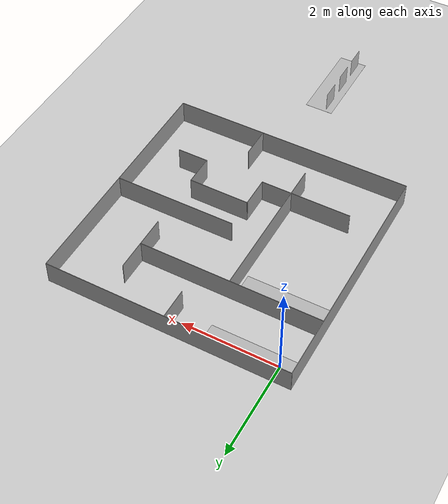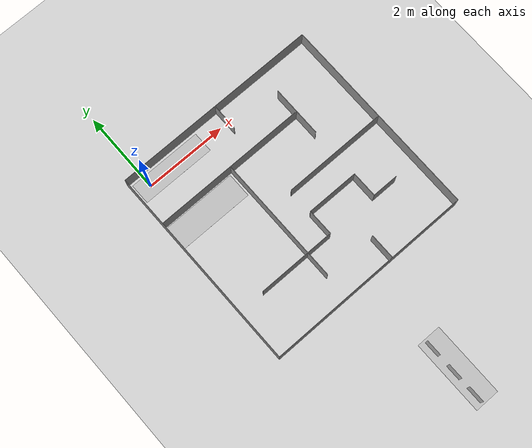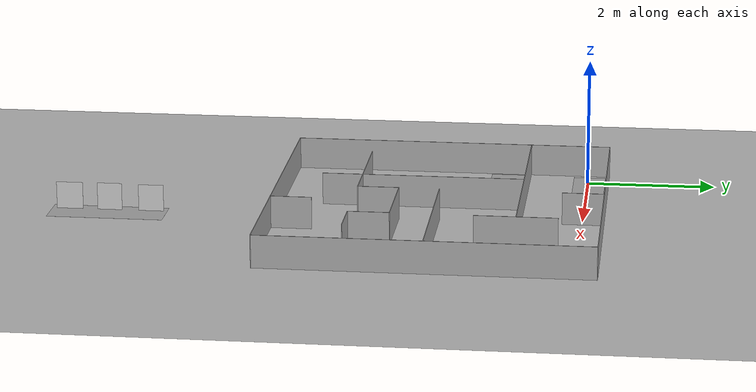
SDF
<sdf version="1.7">
 <world name="default">
  <light name="sun" type="directional">
   <pose>0 0 10 0 -0 0</pose>
   <diffuse>0.8 0.8 0.8 1</diffuse>
   <specular>0.2 0.2 0.2 1</specular>
   <attenuation>
    <range>1000</range>
    <constant>0.9</constant>
    <linear>0.01</linear>
    <quadratic>0.001</quadratic>
   </attenuation>
   <direction>-0.5 0.1 -0.9</direction>
   <spot><inner_angle>0</inner_angle><outer_angle>0</outer_angle><falloff>0</falloff></spot>
  </light>
  <model name="ground_plane">
   <static>1</static>
   <link name="link">
    <collision name="collision">
     <geometry><plane><normal>0 0 1</normal><size>100 100</size></plane></geometry>
     <surface><friction><ode><mu>100</mu><mu2>50</mu2></ode></friction></surface>
    </collision>
    <visual name="visual">
     <cast_shadows>0</cast_shadows>
     <geometry><plane><normal>0 0 1</normal><size>100 100</size></plane></geometry>
     <material>
      <script><uri>file://media/materials/scripts/gazebo.material</uri><name>Gazebo/Grey</name></script>
     </material>
    </visual>
   </link>
  </model>
  <gravity>0 0 -9.8</gravity>
  <magnetic_field>6e-06 2.3e-05 -4.2e-05</magnetic_field>
  <atmosphere type="adiabatic"/>
  <physics type="ode">
   <max_step_size>0.001</max_step_size>
   <real_time_factor>1</real_time_factor>
   <real_time_update_rate>1000</real_time_update_rate>
  </physics>
  <scene><ambient>0.4 0.4 0.4 1</ambient><background>0.7 0.7 0.7 1</background><shadows>1</shadows></scene>
  <spherical_coordinates>
   <surface_model>EARTH_WGS84</surface_model>
   <latitude_deg>0</latitude_deg>
   <longitude_deg>0</longitude_deg>
   <elevation>0</elevation>
   <heading_deg>0</heading_deg>
  </spherical_coordinates>
  <model name="17th_ifly_scale1.25">
   <pose>2.15063 -2.17324 0 0 -0 0</pose>
   <link name="Wall_12">
    <collision name="Wall_12_Collision">
     <geometry><box><size>0.630711 0.01 0.5</size></box></geometry>
     <pose>0 0 0.25 0 -0 0</pose>
    </collision>
    <visual name="Wall_12_Visual">
     <pose>0 0 0.25 0 -0 0</pose>
     <geometry><box><size>0.630711 0.01 0.5</size></box></geometry>
     <material>
      <script><uri>file://media/materials/scripts/gazebo.material</uri><name>Gazebo/Grey</name></script>
      <ambient>1 1 1 1</ambient>
     </material>
     <meta><layer>0</layer></meta>
    </visual>
    <pose>0.0005 2.183 0 0 -0 -1.5708</pose>
   </link>
   <link name="Wall_14">
    <collision name="Wall_14_Collision">
     <geometry><box><size>1.25238 0.01 0.5</size></box></geometry>
     <pose>0 0 0.25 0 -0 0</pose>
    </collision>
    <visual name="Wall_14_Visual">
     <pose>0 0 0.25 0 -0 0</pose>
     <geometry><box><size>1.25238 0.01 0.5</size></box></geometry>
     <material>
      <script><uri>file://media/materials/scripts/gazebo.material</uri><name>Gazebo/Grey</name></script>
      <ambient>1 1 1 1</ambient>
     </material>
     <meta><layer>0</layer></meta>
    </visual>
    <pose>1.2565 1.2475 0 0 -0 -1.57241</pose>
   </link>
   <link name="Wall_16">
    <collision name="Wall_16_Collision">
     <geometry><box><size>3.12902 0.01 0.5</size></box></geometry>
     <pose>0 0 0.25 0 -0 0</pose>
    </collision>
    <visual name="Wall_16_Visual">
     <pose>0 0 0.25 0 -0 0</pose>
     <geometry><box><size>3.12902 0.01 0.5</size></box></geometry>
     <material>
      <script><uri>file://media/materials/scripts/gazebo.material</uri><name>Gazebo/Grey</name></script>
      <ambient>1 1 1 1</ambient>
     </material>
     <meta><layer>0</layer></meta>
    </visual>
    <pose>-0.6345 -0.311999 0 0 -0 -1.57015</pose>
   </link>
   <link name="Wall_18">
    <collision name="Wall_18_Collision">
     <geometry><box><size>2.529 0.01 0.5</size></box></geometry>
     <pose>0 0 0.25 0 -0 0</pose>
    </collision>
    <visual name="Wall_18_Visual">
     <pose>0 0 0.25 0 -0 0</pose>
     <geometry><box><size>2.529 0.01 0.5</size></box></geometry>
     <material>
      <script><uri>file://media/materials/scripts/gazebo.material</uri><name>Gazebo/Grey</name></script>
      <ambient>1 1 1 1</ambient>
     </material>
     <meta><layer>0</layer></meta>
    </visual>
    <pose>1.262 -0.000499 0 0 -0 -3.1408</pose>
   </link>
   <link name="Wall_2">
    <collision name="Wall_2_Collision">
     <geometry><box><size>5.01254 0.01 0.5</size></box></geometry>
     <pose>0 0 0.25 0 -0 0</pose>
    </collision>
    <visual name="Wall_2_Visual">
     <pose>0 0 0.25 0 -0 0</pose>
     <geometry><box><size>5.01254 0.01 0.5</size></box></geometry>
     <material>
      <script><uri>file://media/materials/scripts/gazebo.material</uri><name>Gazebo/Grey</name></script>
      <ambient>1 1 1 1</ambient>
     </material>
     <meta><layer>0</layer></meta>
    </visual>
    <pose>-2.5255 1e-06 0 0 -0 1.5708</pose>
   </link>
   <link name="Wall_20">
    <collision name="Wall_20_Collision">
     <geometry><box><size>0.64199 0.01 0.5</size></box></geometry>
     <pose>0 0 0.25 0 -0 0</pose>
    </collision>
    <visual name="Wall_20_Visual">
     <pose>0 0 0.25 0 -0 0</pose>
     <geometry><box><size>0.64199 0.01 0.5</size></box></geometry>
     <material>
      <script><uri>file://media/materials/scripts/gazebo.material</uri><name>Gazebo/Grey</name></script>
      <ambient>1 1 1 1</ambient>
     </material>
     <meta><layer>0</layer></meta>
    </visual>
    <pose>1.5715 -1.2515 0 0 -0 3.13843</pose>
   </link>
   <link name="Wall_21">
    <collision name="Wall_21_Collision">
     <geometry><box><size>0.635649 0.01 0.5</size></box></geometry>
     <pose>0 0 0.25 0 -0 0</pose>
    </collision>
    <visual name="Wall_21_Visual">
     <pose>0 0 0.25 0 -0 0</pose>
     <geometry><box><size>0.635649 0.01 0.5</size></box></geometry>
     <material>
      <script><uri>file://media/materials/scripts/gazebo.material</uri><name>Gazebo/Grey</name></script>
      <ambient>1 1 1 1</ambient>
     </material>
     <meta><layer>0</layer></meta>
    </visual>
    <pose>1.2555 -0.937499 0 0 -0 1.5708</pose>
   </link>
   <link name="Wall_22">
    <collision name="Wall_22_Collision">
     <geometry><box><size>1.26741 0.01 0.5</size></box></geometry>
     <pose>0 0 0.25 0 -0 0</pose>
    </collision>
    <visual name="Wall_22_Visual">
     <pose>0 0 0.25 0 -0 0</pose>
     <geometry><box><size>1.26741 0.01 0.5</size></box></geometry>
     <material>
      <script><uri>file://media/materials/scripts/gazebo.material</uri><name>Gazebo/Grey</name></script>
      <ambient>1 1 1 1</ambient>
     </material>
     <meta><layer>0</layer></meta>
    </visual>
    <pose>0.627 -0.622499 0 0 -0 3.13841</pose>
   </link>
   <link name="Wall_23">
    <collision name="Wall_23_Collision">
     <geometry><box><size>0.641988 0.01 0.5</size></box></geometry>
     <pose>0 0 0.25 0 -0 0</pose>
    </collision>
    <visual name="Wall_23_Visual">
     <pose>0 0 0.25 0 -0 0</pose>
     <geometry><box><size>0.641988 0.01 0.5</size></box></geometry>
     <material>
      <script><uri>file://media/materials/scripts/gazebo.material</uri><name>Gazebo/Grey</name></script>
      <ambient>1 1 1 1</ambient>
     </material>
     <meta><layer>0</layer></meta>
    </visual>
    <pose>-0.0005 -0.936499 0 0 -0 -1.56763</pose>
   </link>
   <link name="Wall_24">
    <collision name="Wall_24_Collision">
     <geometry><box><size>1.89316 0.01 0.5</size></box></geometry>
     <pose>0 0 0.25 0 -0 0</pose>
    </collision>
    <visual name="Wall_24_Visual">
     <pose>0 0 0.25 0 -0 0</pose>
     <geometry><box><size>1.89316 0.01 0.5</size></box></geometry>
     <material>
      <script><uri>file://media/materials/scripts/gazebo.material</uri><name>Gazebo/Grey</name></script>
      <ambient>1 1 1 1</ambient>
     </material>
     <meta><layer>0</layer></meta>
    </visual>
    <pose>-0.941 -1.2515 0 0 -0 3.14053</pose>
   </link>
   <link name="Wall_26">
    <collision name="Wall_26_Collision">
     <geometry><box><size>0.626858 0.01 0.5</size></box></geometry>
     <pose>0 0 0.25 0 -0 0</pose>
    </collision>
    <visual name="Wall_26_Visual">
     <pose>0 0 0.25 0 -0 0</pose>
     <geometry><box><size>0.626858 0.01 0.5</size></box></geometry>
     <material>
      <script><uri>file://media/materials/scripts/gazebo.material</uri><name>Gazebo/Grey</name></script>
      <ambient>1 1 1 1</ambient>
     </material>
     <meta><layer>0</layer></meta>
    </visual>
    <pose>0.6355 -2.187 0 0 -0 1.5708</pose>
   </link>
   <link name="Wall_3">
    <collision name="Wall_3_Collision">
     <geometry><box><size>5.06129 0.01 0.5</size></box></geometry>
     <pose>0 0 0.25 0 -0 0</pose>
    </collision>
    <visual name="Wall_3_Visual">
     <pose>0 0 0.25 0 -0 0</pose>
     <geometry><box><size>5.06129 0.01 0.5</size></box></geometry>
     <material>
      <script><uri>file://media/materials/scripts/gazebo.material</uri><name>Gazebo/Grey</name></script>
      <ambient>1 1 1 1</ambient>
     </material>
     <meta><layer>0</layer></meta>
    </visual>
    <pose>-0 2.5015 0 0 -0 0</pose>
   </link>
   <link name="Wall_4">
    <collision name="Wall_4_Collision">
     <geometry><box><size>5.01064 0.01 0.5</size></box></geometry>
     <pose>0 0 0.25 0 -0 0</pose>
    </collision>
    <visual name="Wall_4_Visual">
     <pose>0 0 0.25 0 -0 0</pose>
     <geometry><box><size>5.01064 0.01 0.5</size></box></geometry>
     <material>
      <script><uri>file://media/materials/scripts/gazebo.material</uri><name>Gazebo/Grey</name></script>
      <ambient>1 1 1 1</ambient>
     </material>
     <meta><layer>0</layer></meta>
    </visual>
    <pose>2.5255 0.001001 0 0 -0 -1.5708</pose>
   </link>
   <link name="Wall_5">
    <collision name="Wall_5_Collision">
     <geometry><box><size>5.061 0.01 0.5</size></box></geometry>
     <pose>0 0 0.25 0 -0 0</pose>
    </collision>
    <visual name="Wall_5_Visual">
     <pose>0 0 0.25 0 -0 0</pose>
     <geometry><box><size>5.061 0.01 0.5</size></box></geometry>
     <material>
      <script><uri>file://media/materials/scripts/gazebo.material</uri><name>Gazebo/Grey</name></script>
      <ambient>1 1 1 1</ambient>
     </material>
     <meta><layer>0</layer></meta>
    </visual>
    <pose>-0 -2.5005 0 0 -0 -3.1412</pose>
   </link>
   <link name="Wall_7">
    <collision name="Wall_7_Collision">
     <geometry><box><size>3.78886 0.01 0.5</size></box></geometry>
     <pose>0 0 0.25 0 -0 0</pose>
    </collision>
    <visual name="Wall_7_Visual">
     <pose>0 0 0.25 0 -0 0</pose>
     <geometry><box><size>3.78886 0.01 0.5</size></box></geometry>
     <material>
      <script><uri>file://media/materials/scripts/gazebo.material</uri><name>Gazebo/Grey</name></script>
      <ambient>1 1 1 1</ambient>
     </material>
     <meta><layer>0</layer></meta>
    </visual>
    <pose>-0.636 1.2485 0 0 -0 0.000529</pose>
   </link>
   <static>1</static>
  </model>
  <model name="start_plane">
   <static>1</static>
   <link name="link">
    <collision name="collision">
     <geometry><plane><normal>0 0 1</normal><size>0.5 1.8</size></plane></geometry>
     <surface><friction><ode><mu>100</mu><mu2>50</mu2></ode></friction></surface>
    </collision>
    <visual name="visual">
     <cast_shadows>0</cast_shadows>
     <geometry><plane><normal>0 0 1</normal><size>0.5 1.8</size></plane></geometry>
     <material>
      <script>
       <uri>model://start_plane/materials/scripts</uri>
       <uri>model://start_plane/materials/textures/</uri>
       <name>StartPlane/Image</name>
      </script>
     </material>
    </visual>
   </link>
   <pose>0.6 0.02 0.001 0 0 -1.57</pose>
  </model>
  <model name="aruco_marker_0">
   <link name="link">
    <inertial>
     <mass>0.001</mass>
     <inertia>
      <ixx>3.75e-06</ixx>
      <ixy>0</ixy>
      <ixz>0</ixz>
      <iyy>1.875e-06</iyy>
      <iyz>0</iyz>
      <izz>1.875e-06</izz>
     </inertia>
    </inertial>
    <visual name="front_visual">
     <pose>5e-05 0 0 0 -0 0</pose>
     <geometry><box><size>0.0001 0.389778 0.413871</size></box></geometry>
     <material>
      <script>
       <uri>model://aruco_marker_0/materials/scripts</uri>
       <uri>model://aruco_marker_0/materials/textures</uri>
       <name>Marker_0</name>
      </script>
     </material>
    </visual>
    <visual name="rear_visual">
     <pose>-5e-05 0 0 0 -0 0</pose>
     <geometry><box><size>0.0001 0.389778 0.413871</size></box></geometry>
    </visual>
    <collision name="collision"><geometry><box><size>0.0001 0.389778 0.413871</size></box></geometry></collision>
   </link>
   <pose>2.16256 -6.63425 0.206932 1.8e-05 -0 0</pose>
  </model>
  <model name="aruco_marker_1">
   <link name="link">
    <inertial>
     <mass>0.001</mass>
     <inertia>
      <ixx>3.75e-06</ixx>
      <ixy>0</ixy>
      <ixz>0</ixz>
      <iyy>1.875e-06</iyy>
      <iyz>0</iyz>
      <izz>1.875e-06</izz>
     </inertia>
    </inertial>
    <visual name="front_visual">
     <pose>5e-05 0 0 0 -0 0</pose>
     <geometry><box><size>0.0001 0.38255 0.42327</size></box></geometry>
     <material>
      <script>
       <uri>model://aruco_marker_1/materials/scripts</uri>
       <uri>model://aruco_marker_1/materials/textures</uri>
       <name>aruco_1</name>
      </script>
     </material>
    </visual>
    <visual name="rear_visual">
     <pose>-5e-05 0 0 0 -0 0</pose>
     <geometry><box><size>0.0001 0.38255 0.42327</size></box></geometry>
    </visual>
    <collision name="collision"><geometry><box><size>0.0001 0.38255 0.42327</size></box></geometry></collision>
   </link>
   <pose>2.1642 -7.28097 0.211635 5e-06 -3e-06 0</pose>
  </model>
  <model name="aruco_marker_2">
   <link name="link">
    <inertial>
     <mass>0.001</mass>
     <inertia>
      <ixx>3.75e-06</ixx>
      <ixy>0</ixy>
      <ixz>0</ixz>
      <iyy>1.875e-06</iyy>
      <iyz>0</iyz>
      <izz>1.875e-06</izz>
     </inertia>
    </inertial>
    <visual name="front_visual">
     <pose>5e-05 0 0 0 -0 0</pose>
     <geometry><box><size>0.0001 0.41112 0.421138</size></box></geometry>
     <material>
      <script>
       <uri>model://aruco_marker_2/materials/scripts</uri>
       <uri>model://aruco_marker_2/materials/textures</uri>
       <name>aruco_2</name>
      </script>
     </material>
    </visual>
    <visual name="rear_visual">
     <pose>-5e-05 0 0 0 -0 0</pose>
     <geometry><box><size>0.0001 0.41112 0.421138</size></box></geometry>
    </visual>
    <collision name="collision"><geometry><box><size>0.0001 0.41112 0.421138</size></box></geometry></collision>
   </link>
   <pose>2.16931 -7.90527 0.210569 -4e-06 -0 2e-06</pose>
  </model>
  <model name="race_end">
   <static>1</static>
   <link name="link">
    <collision name="collision">
     <geometry><plane><normal>0 0 1</normal><size>0.6 1.8</size></plane></geometry>
     <surface><friction><ode><mu>100</mu><mu2>50</mu2></ode></friction></surface>
    </collision>
    <visual name="visual">
     <cast_shadows>0</cast_shadows>
     <geometry><plane><normal>0 0 1</normal><size>0.6 1.8</size></plane></geometry>
     <material>
      <script>
       <uri>model://race_end/materials/scripts</uri>
       <uri>model://race_end/materials/textures</uri>
       <name>race_end_mat</name>
      </script>
     </material>
    </visual>
   </link>
   <pose>0.56 -1.25 0.0001 0 -0 1.5707</pose>
  </model>
  <model name="race_end_0">
   <static>1</static>
   <link name="link">
    <collision name="collision">
     <geometry><plane><normal>0 0 1</normal><size>0.6 1.8</size></plane></geometry>
     <surface><friction><ode><mu>100</mu><mu2>50</mu2></ode></friction></surface>
    </collision>
    <visual name="visual">
     <cast_shadows>0</cast_shadows>
     <geometry><plane><normal>0 0 1</normal><size>0.6 1.8</size></plane></geometry>
     <material>
      <script>
       <uri>model://race_end/materials/scripts</uri>
       <uri>model://race_end/materials/textures</uri>
       <name>race_end_mat</name>
      </script>
     </material>
    </visual>
   </link>
   <pose>2.30994 -7.2811 0.0001 0 -0 0</pose>
  </model>
 </world>
</sdf>
